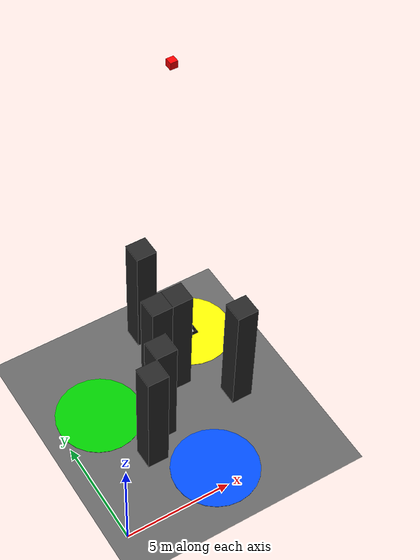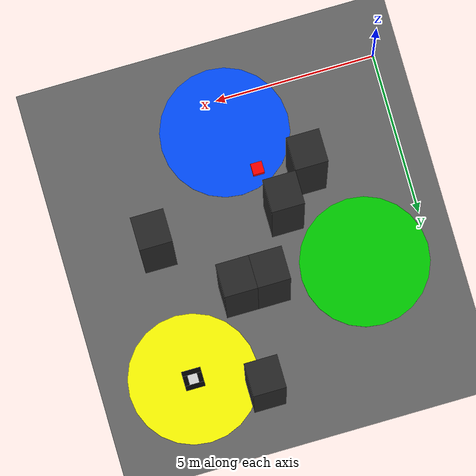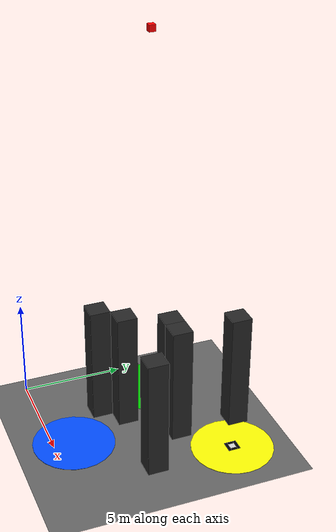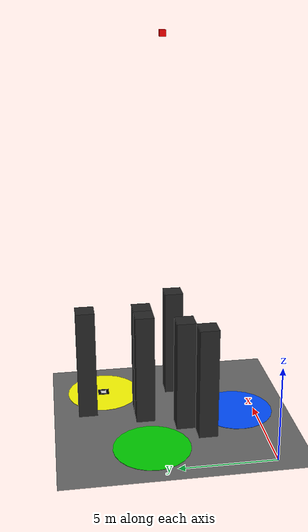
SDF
<sdf version="1.6">
 <world name="recon_mission">
  <physics name="4ms" type="ignored">
   <max_step_size>0.004</max_step_size>
   <real_time_factor>1.0</real_time_factor>
  </physics>
  <plugin filename="gz-sim-physics-system" name="gz::sim::systems::Physics"/>
  <plugin filename="gz-sim-scene-broadcaster-system" name="gz::sim::systems::SceneBroadcaster"/>
  <plugin filename="gz-sim-user-commands-system" name="gz::sim::systems::UserCommands"/>
  <plugin filename="gz-sim-sensors-system" name="gz::sim::systems::Sensors">
   <render_engine>ogre2</render_engine>
  </plugin>
  <light type="directional" name="sun">
   <pose>0 0 10 0 0 0</pose>
   <diffuse>0.8 0.8 0.8 1</diffuse>
   <specular>0.2 0.2 0.2 1</specular>
  </light>
  <model name="ground_plane">
   <static>true</static>
   <pose>5 5 0 0 0 0</pose>
   <link name="link">
    <collision name="collision">
     <geometry><plane><normal>0 0 1</normal><size>10 10</size></plane></geometry>
    </collision>
    <visual name="visual">
     <geometry><plane><normal>0 0 1</normal><size>10 10</size></plane></geometry>
     <material><ambient>0.4 0.4 0.4 1</ambient><diffuse>0.4 0.4 0.4 1</diffuse></material>
    </visual>
   </link>
  </model>
  <model name="blue_disc">
   <static>true</static>
   <pose>5 1 0.01 0 0 0</pose>
   <link name="link">
    <visual name="v">
     <geometry><cylinder><radius>2</radius><length>0.02</length></cylinder></geometry>
     <material><ambient>0 0.3 1 1</ambient><diffuse>0 0.3 1 1</diffuse></material>
    </visual>
   </link>
  </model>
  <model name="green_disc">
   <static>true</static>
   <pose>2 6 0.01 0 0 0</pose>
   <link name="link">
    <visual name="v">
     <geometry><cylinder><radius>2</radius><length>0.02</length></cylinder></geometry>
     <material><ambient>0 0.8 0 1</ambient><diffuse>0 0.8 0 1</diffuse></material>
    </visual>
   </link>
  </model>
  <model name="yellow_disc">
   <static>true</static>
   <pose>8 8 0.01 0 0 0</pose>
   <link name="link">
    <visual name="v">
     <geometry><cylinder><radius>2</radius><length>0.02</length></cylinder></geometry>
     <material><ambient>1 1 0 1</ambient><diffuse>1 1 0 1</diffuse></material>
    </visual>
   </link>
  </model>
  <model name="aruco_marker_0">
   <static>true</static>
   <pose>8 8 0.03 0 0 0</pose>
   <link name="link">
    <visual name="white_board">
     <geometry><box><size>0.6 0.6 0.005</size></box></geometry>
     <material><ambient>1 1 1 1</ambient><diffuse>1 1 1 1</diffuse></material>
    </visual>
    <visual name="border_top">
     <pose>0 0.225 0.003 0 0 0</pose>
     <geometry><box><size>0.6 0.15 0.005</size></box></geometry>
     <material><ambient>0 0 0 1</ambient><diffuse>0 0 0 1</diffuse></material>
    </visual>
    <visual name="border_bottom">
     <pose>0 -0.225 0.003 0 0 0</pose>
     <geometry><box><size>0.6 0.15 0.005</size></box></geometry>
     <material><ambient>0 0 0 1</ambient><diffuse>0 0 0 1</diffuse></material>
    </visual>
    <visual name="border_left">
     <pose>-0.225 0 0.003 0 0 0</pose>
     <geometry><box><size>0.15 0.3 0.005</size></box></geometry>
     <material><ambient>0 0 0 1</ambient><diffuse>0 0 0 1</diffuse></material>
    </visual>
    <visual name="border_right">
     <pose>0.225 0 0.003 0 0 0</pose>
     <geometry><box><size>0.15 0.3 0.005</size></box></geometry>
     <material><ambient>0 0 0 1</ambient><diffuse>0 0 0 1</diffuse></material>
    </visual>
    <visual name="data_region">
     <pose>0 0 0.004 0 0 0</pose>
     <geometry><box><size>0.3 0.3 0.005</size></box></geometry>
     <material><ambient>0.85 0.85 0.85 1</ambient><diffuse>0.85 0.85 0.85 1</diffuse></material>
    </visual>
   </link>
  </model>
  <model name="obs1">
   <static>true</static>
   <pose>4 4 3 0 0 0</pose>
   <link name="link">
    <collision name="c"><geometry><box><size>1 1 6</size></box></geometry></collision>
    <visual name="v">
     <geometry><box><size>1 1 6</size></box></geometry>
     <material><ambient>0.15 0.15 0.15 1</ambient></material>
    </visual>
   </link>
  </model>
  <model name="obs2">
   <static>true</static>
   <pose>8 4 3 0 0 0</pose>
   <link name="link">
    <collision name="c"><geometry><box><size>1 1 6</size></box></geometry></collision>
    <visual name="v">
     <geometry><box><size>1 1 6</size></box></geometry>
     <material><ambient>0.15 0.15 0.15 1</ambient></material>
    </visual>
   </link>
  </model>
  <model name="obs3">
   <static>true</static>
   <pose>3 3 3 0 0 0</pose>
   <link name="link">
    <collision name="c"><geometry><box><size>1 1 6</size></box></geometry></collision>
    <visual name="v">
     <geometry><box><size>1 1 6</size></box></geometry>
     <material><ambient>0.15 0.15 0.15 1</ambient></material>
    </visual>
   </link>
  </model>
  <model name="obs4">
   <static>true</static>
   <pose>6 6 3 0 0 0</pose>
   <link name="link">
    <collision name="c"><geometry><box><size>1 1 6</size></box></geometry></collision>
    <visual name="v">
     <geometry><box><size>1 1 6</size></box></geometry>
     <material><ambient>0.15 0.15 0.15 1</ambient></material>
    </visual>
   </link>
  </model>
  <model name="obs5">
   <static>true</static>
   <pose>5 6 3 0 0 0</pose>
   <link name="link">
    <collision name="c"><geometry><box><size>1 1 6</size></box></geometry></collision>
    <visual name="v">
     <geometry><box><size>1 1 6</size></box></geometry>
     <material><ambient>0.15 0.15 0.15 1</ambient></material>
    </visual>
   </link>
  </model>
  <model name="obs6">
   <static>true</static>
   <pose>6 9 3 0 0 0</pose>
   <link name="link">
    <collision name="c"><geometry><box><size>1 1 6</size></box></geometry></collision>
    <visual name="v">
     <geometry><box><size>1 1 6</size></box></geometry>
     <material><ambient>0.15 0.15 0.15 1</ambient></material>
    </visual>
   </link>
  </model>
  <model name="overhead_camera">
   <static>true</static>
   <pose>5 5 20 0 1.5707 0</pose>
   <link name="link">
    <visual name="visual">
     <geometry><box><size>0.3 0.3 0.3</size></box></geometry>
     <material><ambient>1 0 0 1</ambient></material>
    </visual>
    <sensor name="camera" type="camera">
     <camera>
      <horizontal_fov>1.5708</horizontal_fov>
      <image><width>1280</width><height>1280</height><format>R8G8B8</format></image>
      <clip><near>0.5</near><far>25</far></clip>
     </camera>
     <always_on>1</always_on>
     <update_rate>10</update_rate>
     <topic>/overhead_camera/image</topic>
    </sensor>
   </link>
  </model>
 </world>
</sdf>
